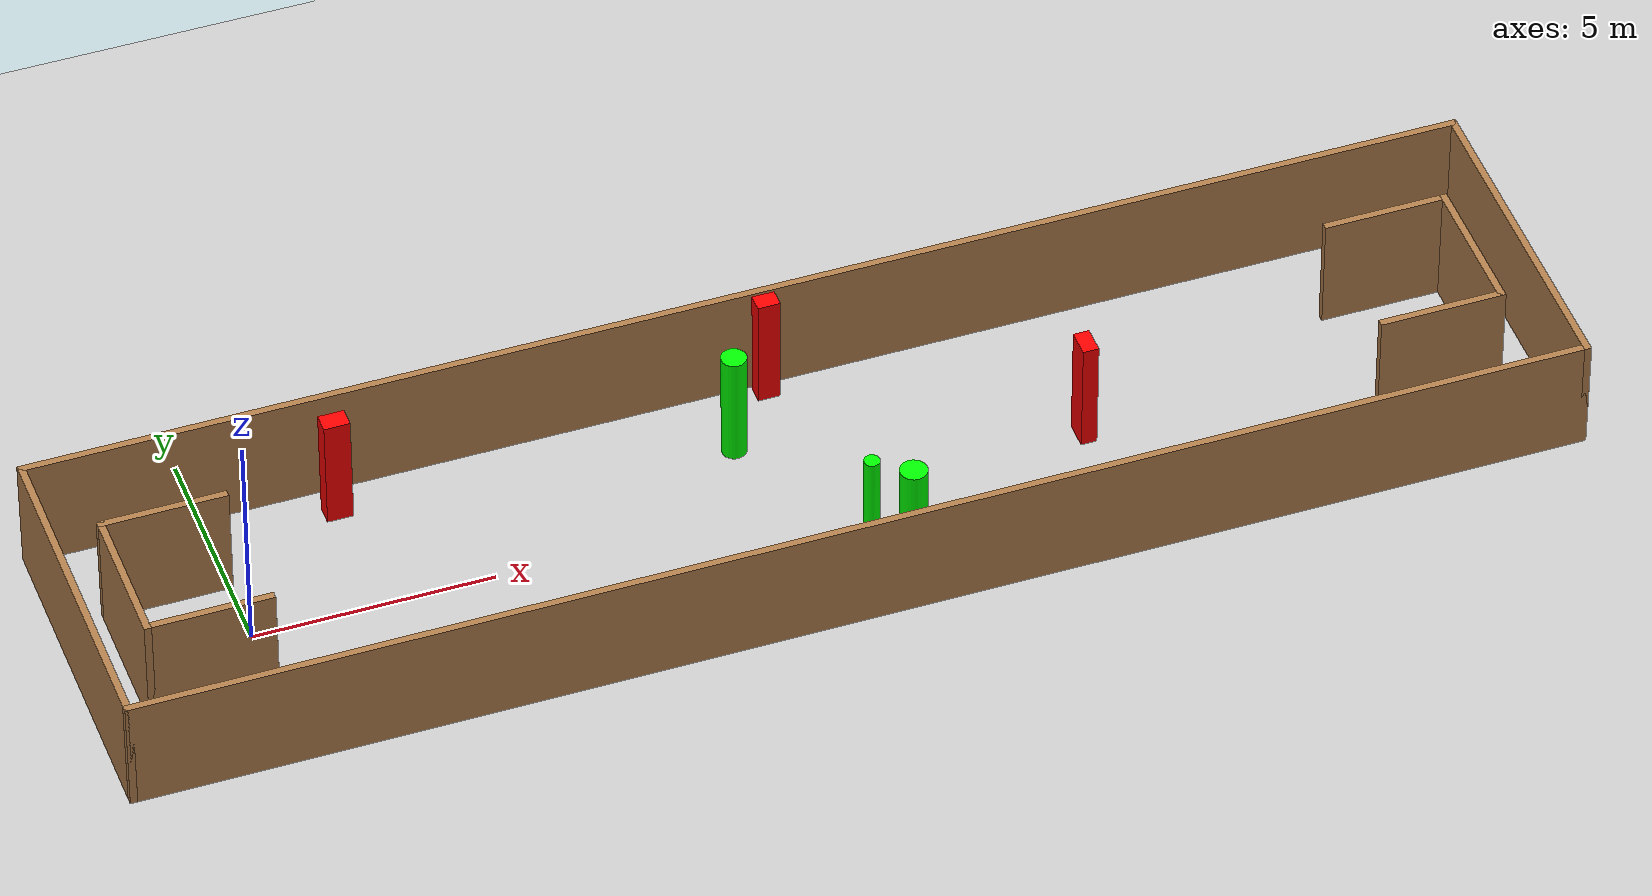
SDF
<sdf version="1.7">
 <world name="default">
  <light name="sun" type="directional">
   <pose>0 0 10 0 -0 0</pose>
   <diffuse>0.8 0.8 0.8 1</diffuse>
   <specular>0.2 0.2 0.2 1</specular>
   <attenuation>
    <range>1000</range>
    <constant>0.9</constant>
    <linear>0.01</linear>
    <quadratic>0.001</quadratic>
   </attenuation>
   <direction>-0.5 0.1 -0.9</direction>
   <spot><inner_angle>0</inner_angle><outer_angle>0</outer_angle><falloff>0</falloff></spot>
  </light>
  <model name="ground_plane">
   <static>1</static>
   <link name="link">
    <collision name="collision">
     <geometry><plane><normal>0 0 1</normal><size>100 100</size></plane></geometry>
     <surface>
      <contact><collide_bitmask>65535</collide_bitmask></contact>
      <friction><ode><mu>100</mu><mu2>50</mu2></ode></friction>
     </surface>
    </collision>
    <visual name="visual">
     <cast_shadows>0</cast_shadows>
     <geometry><plane><normal>0 0 1</normal><size>100 100</size></plane></geometry>
     <material>
      <script><uri>file://media/materials/scripts/gazebo.material</uri><name>Gazebo/Grey</name></script>
     </material>
    </visual>
   </link>
  </model>
  <gravity>0 0 -9.8</gravity>
  <magnetic_field>6e-06 2.3e-05 -4.2e-05</magnetic_field>
  <atmosphere type="adiabatic"/>
  <physics type="ode">
   <max_step_size>0.001</max_step_size>
   <real_time_factor>1</real_time_factor>
   <real_time_update_rate>1000</real_time_update_rate>
  </physics>
  <scene><ambient>0.4 0.4 0.4 1</ambient><background>0.7 0.7 0.7 1</background><shadows>1</shadows></scene>
  <spherical_coordinates>
   <surface_model>EARTH_WGS84</surface_model>
   <latitude_deg>0</latitude_deg>
   <longitude_deg>0</longitude_deg>
   <elevation>0</elevation>
   <heading_deg>0</heading_deg>
  </spherical_coordinates>
  <model name="my_base_walls">
   <link name="Wall_0">
    <collision name="Wall_0_Collision">
     <geometry><box><size>7.15 0.15 2.5</size></box></geometry>
     <pose>0 0 1.25 0 -0 0</pose>
    </collision>
    <visual name="Wall_0_Visual">
     <pose>0 0 1.25 0 -0 0</pose>
     <geometry><box><size>7.15 0.15 2.5</size></box></geometry>
     <material>
      <script><uri>file://media/materials/scripts/gazebo.material</uri><name>Gazebo/Wood</name></script>
      <ambient>1 1 1 1</ambient>
     </material>
     <meta><layer>0</layer></meta>
    </visual>
    <pose>-15 0 0 0 -0 1.5708</pose>
   </link>
   <link name="Wall_10">
    <collision name="Wall_10_Collision">
     <geometry><box><size>2.65 0.15 2.5</size></box></geometry>
     <pose>0 0 1.25 0 -0 0</pose>
    </collision>
    <visual name="Wall_10_Visual">
     <pose>0 0 1.25 0 -0 0</pose>
     <geometry><box><size>2.65 0.15 2.5</size></box></geometry>
     <material>
      <script><uri>file://media/materials/scripts/gazebo.material</uri><name>Gazebo/Wood</name></script>
      <ambient>1 1 1 1</ambient>
     </material>
     <meta><layer>0</layer></meta>
    </visual>
    <pose>-12.75 -1.5 0 0 -0 0</pose>
   </link>
   <link name="Wall_12">
    <collision name="Wall_12_Collision">
     <geometry><box><size>2.65 0.15 2.5</size></box></geometry>
     <pose>0 0 1.25 0 -0 0</pose>
    </collision>
    <visual name="Wall_12_Visual">
     <pose>0 0 1.25 0 -0 0</pose>
     <geometry><box><size>2.65 0.15 2.5</size></box></geometry>
     <material>
      <script><uri>file://media/materials/scripts/gazebo.material</uri><name>Gazebo/Wood</name></script>
      <ambient>1 1 1 1</ambient>
     </material>
     <meta><layer>0</layer></meta>
    </visual>
    <pose>-12.75 1.5 0 0 -0 0</pose>
   </link>
   <link name="Wall_14">
    <collision name="Wall_14_Collision">
     <geometry><box><size>3.15 0.15 2.5</size></box></geometry>
     <pose>0 0 1.25 0 -0 0</pose>
    </collision>
    <visual name="Wall_14_Visual">
     <pose>0 0 1.25 0 -0 0</pose>
     <geometry><box><size>3.15 0.15 2.5</size></box></geometry>
     <material>
      <script><uri>file://media/materials/scripts/gazebo.material</uri><name>Gazebo/Wood</name></script>
      <ambient>1 1 1 1</ambient>
     </material>
     <meta><layer>0</layer></meta>
    </visual>
    <pose>14 0 0 0 -0 -1.5708</pose>
   </link>
   <link name="Wall_15">
    <collision name="Wall_15_Collision">
     <geometry><box><size>2.65 0.15 2.5</size></box></geometry>
     <pose>0 0 1.25 0 -0 0</pose>
    </collision>
    <visual name="Wall_15_Visual">
     <pose>0 0 1.25 0 -0 0</pose>
     <geometry><box><size>2.65 0.15 2.5</size></box></geometry>
     <material>
      <script><uri>file://media/materials/scripts/gazebo.material</uri><name>Gazebo/Wood</name></script>
      <ambient>1 1 1 1</ambient>
     </material>
     <meta><layer>0</layer></meta>
    </visual>
    <pose>12.75 -1.5 0 0 -0 3.14159</pose>
   </link>
   <link name="Wall_17">
    <collision name="Wall_17_Collision">
     <geometry><box><size>2.65 0.15 2.5</size></box></geometry>
     <pose>0 0 1.25 0 -0 0</pose>
    </collision>
    <visual name="Wall_17_Visual">
     <pose>0 0 1.25 0 -0 0</pose>
     <geometry><box><size>2.65 0.15 2.5</size></box></geometry>
     <material>
      <script><uri>file://media/materials/scripts/gazebo.material</uri><name>Gazebo/Wood</name></script>
      <ambient>1 1 1 1</ambient>
     </material>
     <meta><layer>0</layer></meta>
    </visual>
    <pose>12.75 1.5 0 0 -0 3.14159</pose>
   </link>
   <link name="Wall_2">
    <collision name="Wall_2_Collision">
     <geometry><box><size>30.15 0.15 2.5</size></box></geometry>
     <pose>0 0 1.25 0 -0 0</pose>
    </collision>
    <visual name="Wall_2_Visual">
     <pose>0 0 1.25 0 -0 0</pose>
     <geometry><box><size>30.15 0.15 2.5</size></box></geometry>
     <material>
      <script><uri>file://media/materials/scripts/gazebo.material</uri><name>Gazebo/Wood</name></script>
      <ambient>1 1 1 1</ambient>
     </material>
     <meta><layer>0</layer></meta>
    </visual>
    <pose>-0 -3.5 0 0 -0 0</pose>
   </link>
   <link name="Wall_4">
    <collision name="Wall_4_Collision">
     <geometry><box><size>30.15 0.15 2.5</size></box></geometry>
     <pose>0 0 1.25 0 -0 0</pose>
    </collision>
    <visual name="Wall_4_Visual">
     <pose>0 0 1.25 0 -0 0</pose>
     <geometry><box><size>30.15 0.15 2.5</size></box></geometry>
     <material>
      <script><uri>file://media/materials/scripts/gazebo.material</uri><name>Gazebo/Wood</name></script>
      <ambient>1 1 1 1</ambient>
     </material>
     <meta><layer>0</layer></meta>
    </visual>
    <pose>-0 3.5 0 0 -0 0</pose>
   </link>
   <link name="Wall_6">
    <collision name="Wall_6_Collision">
     <geometry><box><size>7.15 0.15 2.5</size></box></geometry>
     <pose>0 0 1.25 0 -0 0</pose>
    </collision>
    <visual name="Wall_6_Visual">
     <pose>0 0 1.25 0 -0 0</pose>
     <geometry><box><size>7.15 0.15 2.5</size></box></geometry>
     <material>
      <script><uri>file://media/materials/scripts/gazebo.material</uri><name>Gazebo/Wood</name></script>
      <ambient>1 1 1 1</ambient>
     </material>
     <meta><layer>0</layer></meta>
    </visual>
    <pose>15 0 0 0 -0 -1.5708</pose>
   </link>
   <link name="Wall_9">
    <collision name="Wall_9_Collision">
     <geometry><box><size>3.15 0.15 2.5</size></box></geometry>
     <pose>0 0 1.25 0 -0 0</pose>
    </collision>
    <visual name="Wall_9_Visual">
     <pose>0 0 1.25 0 -0 0</pose>
     <geometry><box><size>3.15 0.15 2.5</size></box></geometry>
     <material>
      <script><uri>file://media/materials/scripts/gazebo.material</uri><name>Gazebo/Wood</name></script>
      <ambient>1 1 1 1</ambient>
     </material>
     <meta><layer>0</layer></meta>
    </visual>
    <pose>-14 0 0 0 -0 -1.5708</pose>
   </link>
   <static>1</static>
   <pose>11.5 0 0 0 -0 0</pose>
  </model>
  <model name="cylinder1">
   <static>1</static>
   <link name="link">
    <inertial>
     <mass>1</mass>
     <inertia><ixx>0.5</ixx><ixy>0</ixy><ixz>0</ixz><iyy>0.5</iyy><iyz>0</iyz><izz>1</izz></inertia>
    </inertial>
    <collision name="collision">
     <geometry><cylinder><radius>0.2838270377453006</radius><length>2.5</length></cylinder></geometry>
    </collision>
    <visual name="visual">
     <geometry><cylinder><radius>0.2838270377453006</radius><length>2.5</length></cylinder></geometry>
     <material>
      <ambient>0 1 0 1</ambient>
      <diffuse>0 1 0 1</diffuse>
      <specular>0.1 0.1 0.1 1</specular>
      <emissive>0 0 0 0</emissive>
     </material>
    </visual>
   </link>
   <pose>12.83222176450905 -2.3601601975397646 1.25 0 0 0</pose>
  </model>
  <model name="cylinder2">
   <static>1</static>
   <link name="link">
    <inertial>
     <mass>1</mass>
     <inertia><ixx>0.5</ixx><ixy>0</ixy><ixz>0</ixz><iyy>0.5</iyy><iyz>0</iyz><izz>1</izz></inertia>
    </inertial>
    <collision name="collision">
     <geometry><cylinder><radius>0.2631803184673076</radius><length>2.5</length></cylinder></geometry>
    </collision>
    <visual name="visual">
     <geometry><cylinder><radius>0.2631803184673076</radius><length>2.5</length></cylinder></geometry>
     <material>
      <ambient>0 1 0 1</ambient>
      <diffuse>0 1 0 1</diffuse>
      <specular>0.1 0.1 0.1 1</specular>
      <emissive>0 0 0 0</emissive>
     </material>
    </visual>
   </link>
   <pose>10.593948542564892 1.827339796516772 1.25 0 0 0</pose>
  </model>
  <model name="cylinder3">
   <static>1</static>
   <link name="link">
    <inertial>
     <mass>1</mass>
     <inertia><ixx>0.5</ixx><ixy>0</ixy><ixz>0</ixz><iyy>0.5</iyy><iyz>0</iyz><izz>1</izz></inertia>
    </inertial>
    <collision name="collision">
     <geometry><cylinder><radius>0.16576262730880897</radius><length>2.5</length></cylinder></geometry>
    </collision>
    <visual name="visual">
     <geometry><cylinder><radius>0.16576262730880897</radius><length>2.5</length></cylinder></geometry>
     <material>
      <ambient>0 1 0 1</ambient>
      <diffuse>0 1 0 1</diffuse>
      <specular>0.1 0.1 0.1 1</specular>
      <emissive>0 0 0 0</emissive>
     </material>
    </visual>
   </link>
   <pose>12.157451460599523 -1.8389430433995266 1.25 0 0 0</pose>
  </model>
  <model name="box1">
   <static>1</static>
   <link name="link">
    <inertial>
     <mass>1</mass>
     <inertia><ixx>0.083</ixx><ixy>0</ixy><ixz>0</ixz><iyy>0.083</iyy><iyz>0</iyz><izz>0.083</izz></inertia>
    </inertial>
    <collision name="collision">
     <geometry><box><size>0.4695572872093374 0.3656613155376696 2.5</size></box></geometry>
    </collision>
    <visual name="visual">
     <geometry><box><size>0.4695572872093374 0.3656613155376696 2.5</size></box></geometry>
     <material>
      <ambient>1 0 0 1</ambient>
      <diffuse>1 0 0 1</diffuse>
      <specular>0.1 0.1 0.1 1</specular>
      <emissive>0 0 0 0</emissive>
     </material>
    </visual>
    <sensor name="my_contact" type="contact">
     <contact><collision>box_collision</collision><topic>__default_topic__</topic></contact>
    </sensor>
   </link>
   <pose>11.74291840484725 3.179962056335431 1.25 0 0 0</pose>
  </model>
  <model name="box2">
   <static>1</static>
   <link name="link">
    <inertial>
     <mass>1</mass>
     <inertia><ixx>0.083</ixx><ixy>0</ixy><ixz>0</ixz><iyy>0.083</iyy><iyz>0</iyz><izz>0.083</izz></inertia>
    </inertial>
    <collision name="collision">
     <geometry><box><size>0.5419507639197212 0.39970786085508786 2.5</size></box></geometry>
    </collision>
    <visual name="visual">
     <geometry><box><size>0.5419507639197212 0.39970786085508786 2.5</size></box></geometry>
     <material>
      <ambient>1 0 0 1</ambient>
      <diffuse>1 0 0 1</diffuse>
      <specular>0.1 0.1 0.1 1</specular>
      <emissive>0 0 0 0</emissive>
     </material>
    </visual>
    <sensor name="my_contact" type="contact">
     <contact><collision>box_collision</collision><topic>__default_topic__</topic></contact>
    </sensor>
   </link>
   <pose>2.6427370853353054 2.766737492115735 1.25 0 0 0</pose>
  </model>
  <model name="box3">
   <static>1</static>
   <link name="link">
    <inertial>
     <mass>1</mass>
     <inertia><ixx>0.083</ixx><ixy>0</ixy><ixz>0</ixz><iyy>0.083</iyy><iyz>0</iyz><izz>0.083</izz></inertia>
    </inertial>
    <collision name="collision">
     <geometry><box><size>0.3327057995756511 0.5572505678018782 2.5</size></box></geometry>
    </collision>
    <visual name="visual">
     <geometry><box><size>0.3327057995756511 0.5572505678018782 2.5</size></box></geometry>
     <material>
      <ambient>1 0 0 1</ambient>
      <diffuse>1 0 0 1</diffuse>
      <specular>0.1 0.1 0.1 1</specular>
      <emissive>0 0 0 0</emissive>
     </material>
    </visual>
    <sensor name="my_contact" type="contact">
     <contact><collision>box_collision</collision><topic>__default_topic__</topic></contact>
    </sensor>
   </link>
   <pose>17.275653726372454 -0.06341212371472915 1.25 0 0 0</pose>
  </model>
 </world>
</sdf>
